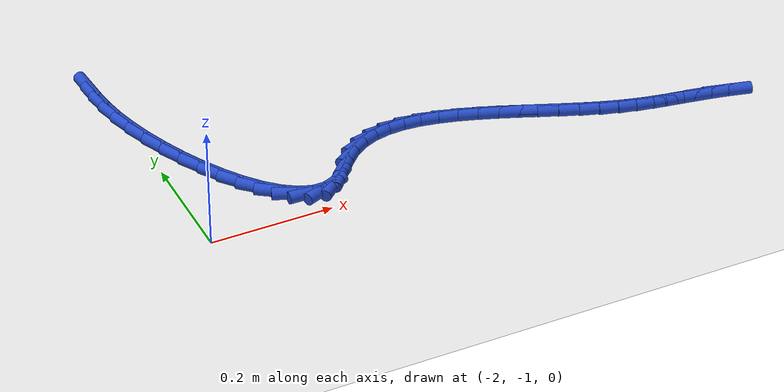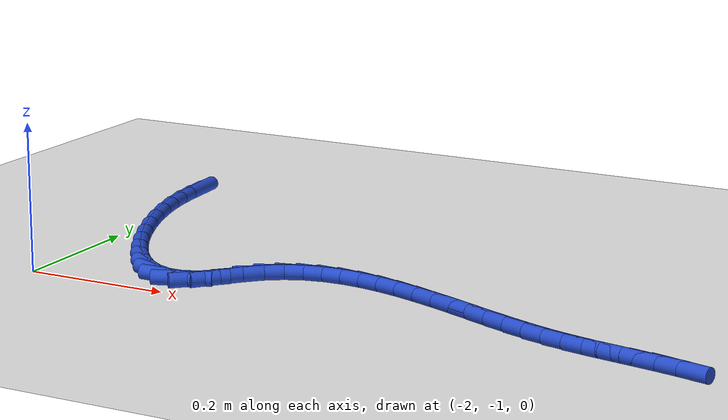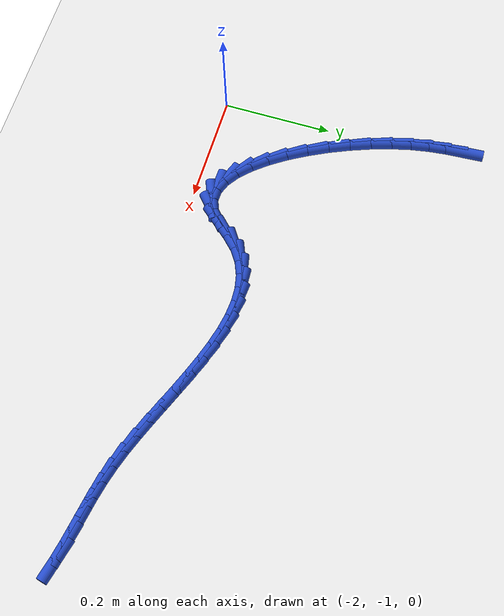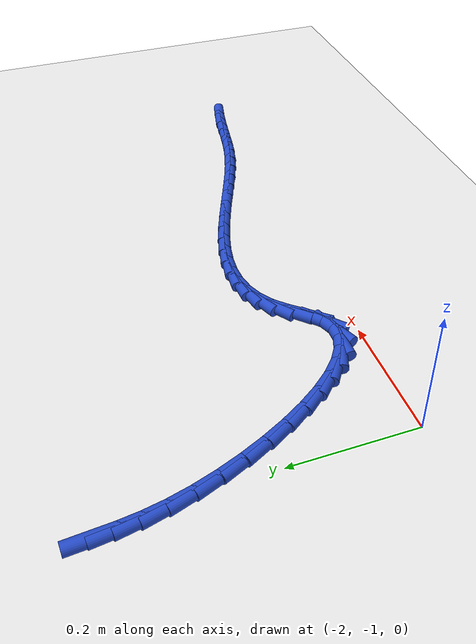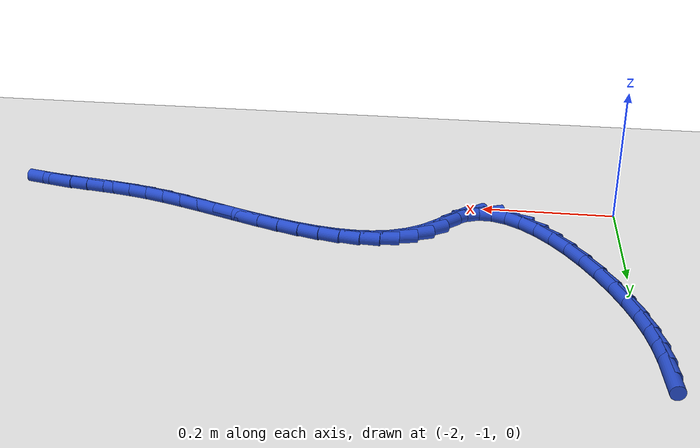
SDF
<sdf version="1.6">
 <world name="default">
  <model name="ground_plane">
   <static>1</static>
   <link name="link">
    <collision name="collision">
     <geometry><plane><normal>0 0 1</normal><size>100 100</size></plane></geometry>
     <surface><friction><ode><mu>100</mu><mu2>50</mu2></ode></friction></surface>
    </collision>
    <visual name="visual">
     <cast_shadows>0</cast_shadows>
     <geometry><plane><normal>0 0 1</normal><size>100 100</size></plane></geometry>
     <material>
      <script><uri>file://media/materials/scripts/gazebo.material</uri><name>Gazebo/WhiteGlow</name></script>
     </material>
    </visual>
   </link>
  </model>
  <model name="line">
   <link name="link_141">
    <pose>-2.022825148530679 -0.5503528811230335 0.01 0 1.57 -1.5067209440025462</pose>
    <collision name="collision">
     <geometry><cylinder><radius>0.01</radius><length>0.08</length></cylinder></geometry>
    </collision>
    <visual name="visual">
     <material>
      <script><name>Gazebo/Blue</name><uri>file://media/materials/scripts/gazebo.material</uri></script>
     </material>
     <geometry><cylinder><radius>0.01</radius><length>0.08</length></cylinder></geometry>
    </visual>
   </link>
   <link name="link_142">
    <pose>-2.020936011002648 -0.5797955680923984 0.01 0 1.57 -1.4574021422607188</pose>
    <collision name="collision">
     <geometry><cylinder><radius>0.01</radius><length>0.08</length></cylinder></geometry>
    </collision>
    <visual name="visual">
     <material>
      <script><name>Gazebo/Blue</name><uri>file://media/materials/scripts/gazebo.material</uri></script>
     </material>
     <geometry><cylinder><radius>0.01</radius><length>0.08</length></cylinder></geometry>
    </visual>
   </link>
   <link name="link_143">
    <pose>-2.0174088044160388 -0.6107678418025859 0.01 0 1.57 -1.3943007249524453</pose>
    <collision name="collision">
     <geometry><cylinder><radius>0.01</radius><length>0.08</length></cylinder></geometry>
    </collision>
    <visual name="visual">
     <material>
      <script><name>Gazebo/Blue</name><uri>file://media/materials/scripts/gazebo.material</uri></script>
     </material>
     <geometry><cylinder><radius>0.01</radius><length>0.08</length></cylinder></geometry>
    </visual>
   </link>
   <link name="link_144">
    <pose>-2.011534063825805 -0.643706978618781 0.01 0 1.57 -1.3257092247358675</pose>
    <collision name="collision">
     <geometry><cylinder><radius>0.01</radius><length>0.08</length></cylinder></geometry>
    </collision>
    <visual name="visual">
     <material>
      <script><name>Gazebo/Blue</name><uri>file://media/materials/scripts/gazebo.material</uri></script>
     </material>
     <geometry><cylinder><radius>0.01</radius><length>0.08</length></cylinder></geometry>
    </visual>
   </link>
   <link name="link_145">
    <pose>-2.002739988222112 -0.6788670765194355 0.01 0 1.57 -1.264859496534346</pose>
    <collision name="collision">
     <geometry><cylinder><radius>0.01</radius><length>0.08</length></cylinder></geometry>
    </collision>
    <visual name="visual">
     <material>
      <script><name>Gazebo/Blue</name><uri>file://media/materials/scripts/gazebo.material</uri></script>
     </material>
     <geometry><cylinder><radius>0.01</radius><length>0.08</length></cylinder></geometry>
    </visual>
   </link>
   <link name="link_146">
    <pose>-1.991141361108458 -0.7155886503915733 0.01 0 1.57 -1.2103237620043246</pose>
    <collision name="collision">
     <geometry><cylinder><radius>0.01</radius><length>0.08</length></cylinder></geometry>
    </collision>
    <visual name="visual">
     <material>
      <script><name>Gazebo/Blue</name><uri>file://media/materials/scripts/gazebo.material</uri></script>
     </material>
     <geometry><cylinder><radius>0.01</radius><length>0.08</length></cylinder></geometry>
    </visual>
   </link>
   <link name="link_147">
    <pose>-1.9770665873330988 -0.7529279662864959 0.01 0 1.57 -1.1577248672996276</pose>
    <collision name="collision">
     <geometry><cylinder><radius>0.01</radius><length>0.08</length></cylinder></geometry>
    </collision>
    <visual name="visual">
     <material>
      <script><name>Gazebo/Blue</name><uri>file://media/materials/scripts/gazebo.material</uri></script>
     </material>
     <geometry><cylinder><radius>0.01</radius><length>0.08</length></cylinder></geometry>
    </visual>
   </link>
   <link name="link_148">
    <pose>-1.9608441399079217 -0.789941199555614 0.01 0 1.57 -1.1033513878190766</pose>
    <collision name="collision">
     <geometry><cylinder><radius>0.01</radius><length>0.08</length></cylinder></geometry>
    </collision>
    <visual name="visual">
     <material>
      <script><name>Gazebo/Blue</name><uri>file://media/materials/scripts/gazebo.material</uri></script>
     </material>
     <geometry><cylinder><radius>0.01</radius><length>0.08</length></cylinder></geometry>
    </visual>
   </link>
   <link name="link_149">
    <pose>-1.942802491844811 -0.8256845255503414 0.01 0 1.57 -1.04331297645358</pose>
    <collision name="collision">
     <geometry><cylinder><radius>0.01</radius><length>0.08</length></cylinder></geometry>
    </collision>
    <visual name="visual">
     <material>
      <script><name>Gazebo/Blue</name><uri>file://media/materials/scripts/gazebo.material</uri></script>
     </material>
     <geometry><cylinder><radius>0.01</radius><length>0.08</length></cylinder></geometry>
    </visual>
   </link>
   <link name="link_150">
    <pose>-1.923270116155653 -0.8592141196220914 0.01 0 1.57 -0.9726826596746393</pose>
    <collision name="collision">
     <geometry><cylinder><radius>0.01</radius><length>0.08</length></cylinder></geometry>
    </collision>
    <visual name="visual">
     <material>
      <script><name>Gazebo/Blue</name><uri>file://media/materials/scripts/gazebo.material</uri></script>
     </material>
     <geometry><cylinder><radius>0.01</radius><length>0.08</length></cylinder></geometry>
    </visual>
   </link>
   <link name="link_151">
    <pose>-1.9025754858523325 -0.8895861571222761 0.01 0 1.57 -0.8842866238934173</pose>
    <collision name="collision">
     <geometry><cylinder><radius>0.01</radius><length>0.08</length></cylinder></geometry>
    </collision>
    <visual name="visual">
     <material>
      <script><name>Gazebo/Blue</name><uri>file://media/materials/scripts/gazebo.material</uri></script>
     </material>
     <geometry><cylinder><radius>0.01</radius><length>0.08</length></cylinder></geometry>
    </visual>
   </link>
   <link name="link_152">
    <pose>-1.881047073946735 -0.9158568134023086 0.01 0 1.57 -0.7667159734645543</pose>
    <collision name="collision">
     <geometry><cylinder><radius>0.01</radius><length>0.08</length></cylinder></geometry>
    </collision>
    <visual name="visual">
     <material>
      <script><name>Gazebo/Blue</name><uri>file://media/materials/scripts/gazebo.material</uri></script>
     </material>
     <geometry><cylinder><radius>0.01</radius><length>0.08</length></cylinder></geometry>
    </visual>
   </link>
   <link name="link_153">
    <pose>-1.8590133534507454 -0.937082263813602 0.01 0 1.57 -0.6012674045998243</pose>
    <collision name="collision">
     <geometry><cylinder><radius>0.01</radius><length>0.08</length></cylinder></geometry>
    </collision>
    <visual name="visual">
     <material>
      <script><name>Gazebo/Blue</name><uri>file://media/materials/scripts/gazebo.material</uri></script>
     </material>
     <geometry><cylinder><radius>0.01</radius><length>0.08</length></cylinder></geometry>
    </visual>
   </link>
   <link name="link_154">
    <pose>-1.8368027973762504 -0.9523186837075693 0.01 0 1.57 -0.3600208401753605</pose>
    <collision name="collision">
     <geometry><cylinder><radius>0.01</radius><length>0.08</length></cylinder></geometry>
    </collision>
    <visual name="visual">
     <material>
      <script><name>Gazebo/Blue</name><uri>file://media/materials/scripts/gazebo.material</uri></script>
     </material>
     <geometry><cylinder><radius>0.01</radius><length>0.08</length></cylinder></geometry>
    </visual>
   </link>
   <link name="link_155">
    <pose>-1.8147438787351335 -0.9606222484356227 0.01 0 1.57 -0.019780019148368723</pose>
    <collision name="collision">
     <geometry><cylinder><radius>0.01</radius><length>0.08</length></cylinder></geometry>
    </collision>
    <visual name="visual">
     <material>
      <script><name>Gazebo/Blue</name><uri>file://media/materials/scripts/gazebo.material</uri></script>
     </material>
     <geometry><cylinder><radius>0.01</radius><length>0.08</length></cylinder></geometry>
    </visual>
   </link>
   <link name="link_156">
    <pose>-1.793165070539282 -0.9610491333491754 0.01 0 1.57 0.384051240198109</pose>
    <collision name="collision">
     <geometry><cylinder><radius>0.01</radius><length>0.08</length></cylinder></geometry>
    </collision>
    <visual name="visual">
     <material>
      <script><name>Gazebo/Blue</name><uri>file://media/materials/scripts/gazebo.material</uri></script>
     </material>
     <geometry><cylinder><radius>0.01</radius><length>0.08</length></cylinder></geometry>
    </visual>
   </link>
   <link name="link_157">
    <pose>-1.7723948458005807 -0.9526555137996402 0.01 0 1.57 0.7334150105336558</pose>
    <collision name="collision">
     <geometry><cylinder><radius>0.01</radius><length>0.08</length></cylinder></geometry>
    </collision>
    <visual name="visual">
     <material>
      <script><name>Gazebo/Blue</name><uri>file://media/materials/scripts/gazebo.material</uri></script>
     </material>
     <geometry><cylinder><radius>0.01</radius><length>0.08</length></cylinder></geometry>
    </visual>
   </link>
   <link name="link_158">
    <pose>-1.752675830113138 -0.93488697651753 0.01 0 1.57 0.867558370786298</pose>
    <collision name="collision">
     <geometry><cylinder><radius>0.01</radius><length>0.08</length></cylinder></geometry>
    </collision>
    <visual name="visual">
     <material>
      <script><name>Gazebo/Blue</name><uri>file://media/materials/scripts/gazebo.material</uri></script>
     </material>
     <geometry><cylinder><radius>0.01</radius><length>0.08</length></cylinder></geometry>
    </visual>
   </link>
   <link name="link_159">
    <pose>-1.7332068442785966 -0.9119238978667035 0.01 0 1.57 0.7922463676728214</pose>
    <collision name="collision">
     <geometry><cylinder><radius>0.01</radius><length>0.08</length></cylinder></geometry>
    </collision>
    <visual name="visual">
     <material>
      <script><name>Gazebo/Blue</name><uri>file://media/materials/scripts/gazebo.material</uri></script>
     </material>
     <geometry><cylinder><radius>0.01</radius><length>0.08</length></cylinder></geometry>
    </visual>
   </link>
   <link name="link_160">
    <pose>-1.7125226783893497 -0.8909544752351355 0.01 0 1.57 0.5996605497377184</pose>
    <collision name="collision">
     <geometry><cylinder><radius>0.01</radius><length>0.08</length></cylinder></geometry>
    </collision>
    <visual name="visual">
     <material>
      <script><name>Gazebo/Blue</name><uri>file://media/materials/scripts/gazebo.material</uri></script>
     </material>
     <geometry><cylinder><radius>0.01</radius><length>0.08</length></cylinder></geometry>
    </visual>
   </link>
   <link name="link_161">
    <pose>-1.689939487208088 -0.8755157341141384 0.01 0 1.57 0.3986026713861217</pose>
    <collision name="collision">
     <geometry><cylinder><radius>0.01</radius><length>0.08</length></cylinder></geometry>
    </collision>
    <visual name="visual">
     <material>
      <script><name>Gazebo/Blue</name><uri>file://media/materials/scripts/gazebo.material</uri></script>
     </material>
     <geometry><cylinder><radius>0.01</radius><length>0.08</length></cylinder></geometry>
    </visual>
   </link>
   <link name="link_162">
    <pose>-1.665603700288155 -0.8652667884322285 0.01 0 1.57 0.21227026429608575</pose>
    <collision name="collision">
     <geometry><cylinder><radius>0.01</radius><length>0.08</length></cylinder></geometry>
    </collision>
    <visual name="visual">
     <material>
      <script><name>Gazebo/Blue</name><uri>file://media/materials/scripts/gazebo.material</uri></script>
     </material>
     <geometry><cylinder><radius>0.01</radius><length>0.08</length></cylinder></geometry>
    </visual>
   </link>
   <link name="link_163">
    <pose>-1.6397008158656685 -0.8596842765106005 0.01 0 1.57 0.052707855193336324</pose>
    <collision name="collision">
     <geometry><cylinder><radius>0.01</radius><length>0.08</length></cylinder></geometry>
    </collision>
    <visual name="visual">
     <material>
      <script><name>Gazebo/Blue</name><uri>file://media/materials/scripts/gazebo.material</uri></script>
     </material>
     <geometry><cylinder><radius>0.01</radius><length>0.08</length></cylinder></geometry>
    </visual>
   </link>
   <link name="link_164">
    <pose>-1.6124163321767444 -0.8582448366704469 0.01 0 1.57 -0.07640385383031506</pose>
    <collision name="collision">
     <geometry><cylinder><radius>0.01</radius><length>0.08</length></cylinder></geometry>
    </collision>
    <visual name="visual">
     <material>
      <script><name>Gazebo/Blue</name><uri>file://media/materials/scripts/gazebo.material</uri></script>
     </material>
     <geometry><cylinder><radius>0.01</radius><length>0.08</length></cylinder></geometry>
    </visual>
   </link>
   <link name="link_165">
    <pose>-1.5839357474575 -0.8604251072329617 0.01 0 1.57 -0.1770484759457326</pose>
    <collision name="collision">
     <geometry><cylinder><radius>0.01</radius><length>0.08</length></cylinder></geometry>
    </collision>
    <visual name="visual">
     <material>
      <script><name>Gazebo/Blue</name><uri>file://media/materials/scripts/gazebo.material</uri></script>
     </material>
     <geometry><cylinder><radius>0.01</radius><length>0.08</length></cylinder></geometry>
    </visual>
   </link>
   <link name="link_166">
    <pose>-1.5544445599440517 -0.8657017265193384 0.01 0 1.57 -0.25335963982494564</pose>
    <collision name="collision">
     <geometry><cylinder><radius>0.01</radius><length>0.08</length></cylinder></geometry>
    </collision>
    <visual name="visual">
     <material>
      <script><name>Gazebo/Blue</name><uri>file://media/materials/scripts/gazebo.material</uri></script>
     </material>
     <geometry><cylinder><radius>0.01</radius><length>0.08</length></cylinder></geometry>
    </visual>
   </link>
   <link name="link_167">
    <pose>-1.5241282678725168 -0.8735513328507699 0.01 0 1.57 -0.3095078954295454</pose>
    <collision name="collision">
     <geometry><cylinder><radius>0.01</radius><length>0.08</length></cylinder></geometry>
    </collision>
    <visual name="visual">
     <material>
      <script><name>Gazebo/Blue</name><uri>file://media/materials/scripts/gazebo.material</uri></script>
     </material>
     <geometry><cylinder><radius>0.01</radius><length>0.08</length></cylinder></geometry>
    </visual>
   </link>
   <link name="link_168">
    <pose>-1.4931723694790122 -0.8834505645484504 0.01 0 1.57 -0.3488743319923351</pose>
    <collision name="collision">
     <geometry><cylinder><radius>0.01</radius><length>0.08</length></cylinder></geometry>
    </collision>
    <visual name="visual">
     <material>
      <script><name>Gazebo/Blue</name><uri>file://media/materials/scripts/gazebo.material</uri></script>
     </material>
     <geometry><cylinder><radius>0.01</radius><length>0.08</length></cylinder></geometry>
    </visual>
   </link>
   <link name="link_169">
    <pose>-1.4617623629996548 -0.894876059933573 0.01 0 1.57 -0.3738748426272596</pose>
    <collision name="collision">
     <geometry><cylinder><radius>0.01</radius><length>0.08</length></cylinder></geometry>
    </collision>
    <visual name="visual">
     <material>
      <script><name>Gazebo/Blue</name><uri>file://media/materials/scripts/gazebo.material</uri></script>
     </material>
     <geometry><cylinder><radius>0.01</radius><length>0.08</length></cylinder></geometry>
    </visual>
   </link>
   <link name="link_170">
    <pose>-1.4300837466705598 -0.9073044573273317 0.01 0 1.57 -0.38601064326408063</pose>
    <collision name="collision">
     <geometry><cylinder><radius>0.01</radius><length>0.08</length></cylinder></geometry>
    </collision>
    <visual name="visual">
     <material>
      <script><name>Gazebo/Blue</name><uri>file://media/materials/scripts/gazebo.material</uri></script>
     </material>
     <geometry><cylinder><radius>0.01</radius><length>0.08</length></cylinder></geometry>
    </visual>
   </link>
   <link name="link_171">
    <pose>-1.3983220187278471 -0.9202123950509193 0.01 0 1.57 -0.385950689916885</pose>
    <collision name="collision">
     <geometry><cylinder><radius>0.01</radius><length>0.08</length></cylinder></geometry>
    </collision>
    <visual name="visual">
     <material>
      <script><name>Gazebo/Blue</name><uri>file://media/materials/scripts/gazebo.material</uri></script>
     </material>
     <geometry><cylinder><radius>0.01</radius><length>0.08</length></cylinder></geometry>
    </visual>
   </link>
   <link name="link_172">
    <pose>-1.3666626774076316 -0.9330765114255297 0.01 0 1.57 -0.37357213597427874</pose>
    <collision name="collision">
     <geometry><cylinder><radius>0.01</radius><length>0.08</length></cylinder></geometry>
    </collision>
    <visual name="visual">
     <material>
      <script><name>Gazebo/Blue</name><uri>file://media/materials/scripts/gazebo.material</uri></script>
     </material>
     <geometry><cylinder><radius>0.01</radius><length>0.08</length></cylinder></geometry>
    </visual>
   </link>
   <link name="link_173">
    <pose>-1.3352912209460306 -0.9453734447723563 0.01 0 1.57 -0.3479339495189804</pose>
    <collision name="collision">
     <geometry><cylinder><radius>0.01</radius><length>0.08</length></cylinder></geometry>
    </collision>
    <visual name="visual">
     <material>
      <script><name>Gazebo/Blue</name><uri>file://media/materials/scripts/gazebo.material</uri></script>
     </material>
     <geometry><cylinder><radius>0.01</radius><length>0.08</length></cylinder></geometry>
    </visual>
   </link>
   <link name="link_174">
    <pose>-1.3043931475791608 -0.9565798334125928 0.01 0 1.57 -0.3071793155715478</pose>
    <collision name="collision">
     <geometry><cylinder><radius>0.01</radius><length>0.08</length></cylinder></geometry>
    </collision>
    <visual name="visual">
     <material>
      <script><name>Gazebo/Blue</name><uri>file://media/materials/scripts/gazebo.material</uri></script>
     </material>
     <geometry><cylinder><radius>0.01</radius><length>0.08</length></cylinder></geometry>
    </visual>
   </link>
   <link name="link_175">
    <pose>-1.2741539555431394 -0.9661723156674324 0.01 0 1.57 -0.2533183846172204</pose>
    <collision name="collision">
     <geometry><cylinder><radius>0.01</radius><length>0.08</length></cylinder></geometry>
    </collision>
    <visual name="visual">
     <material>
      <script><name>Gazebo/Blue</name><uri>file://media/materials/scripts/gazebo.material</uri></script>
     </material>
     <geometry><cylinder><radius>0.01</radius><length>0.08</length></cylinder></geometry>
    </visual>
   </link>
   <link name="link_176">
    <pose>-1.2446952120376071 -0.9737985855663502 0.01 0 1.57 -0.20689087464066783</pose>
    <collision name="collision">
     <geometry><cylinder><radius>0.01</radius><length>0.08</length></cylinder></geometry>
    </collision>
    <visual name="visual">
     <material>
      <script><name>Gazebo/Blue</name><uri>file://media/materials/scripts/gazebo.material</uri></script>
     </material>
     <geometry><cylinder><radius>0.01</radius><length>0.08</length></cylinder></geometry>
    </visual>
   </link>
   <link name="link_177">
    <pose>-1.215860214071444 -0.9798508848139286 0.01 0 1.57 -0.17650006064304466</pose>
    <collision name="collision">
     <geometry><cylinder><radius>0.01</radius><length>0.08</length></cylinder></geometry>
    </collision>
    <visual name="visual">
     <material>
      <script><name>Gazebo/Blue</name><uri>file://media/materials/scripts/gazebo.material</uri></script>
     </material>
     <geometry><cylinder><radius>0.01</radius><length>0.08</length></cylinder></geometry>
    </visual>
   </link>
   <link name="link_178">
    <pose>-1.1874165663649896 -0.9849239795651767 0.01 0 1.57 -0.16427291127126642</pose>
    <collision name="collision">
     <geometry><cylinder><radius>0.01</radius><length>0.08</length></cylinder></geometry>
    </collision>
    <visual name="visual">
     <material>
      <script><name>Gazebo/Blue</name><uri>file://media/materials/scripts/gazebo.material</uri></script>
     </material>
     <geometry><cylinder><radius>0.01</radius><length>0.08</length></cylinder></geometry>
    </visual>
   </link>
   <link name="link_179">
    <pose>-1.1591318720846977 -0.9896126401327279 0.01 0 1.57 -0.1710660912060923</pose>
    <collision name="collision">
     <geometry><cylinder><radius>0.01</radius><length>0.08</length></cylinder></geometry>
    </collision>
    <visual name="visual">
     <material>
      <script><name>Gazebo/Blue</name><uri>file://media/materials/scripts/gazebo.material</uri></script>
     </material>
     <geometry><cylinder><radius>0.01</radius><length>0.08</length></cylinder></geometry>
    </visual>
   </link>
   <link name="link_180">
    <pose>-1.130773734397022 -0.9945116368292145 0.01 0 1.57 -0.19643288134866238</pose>
    <collision name="collision">
     <geometry><cylinder><radius>0.01</radius><length>0.08</length></cylinder></geometry>
    </collision>
    <visual name="visual">
     <material>
      <script><name>Gazebo/Blue</name><uri>file://media/materials/scripts/gazebo.material</uri></script>
     </material>
     <geometry><cylinder><radius>0.01</radius><length>0.08</length></cylinder></geometry>
    </visual>
   </link>
   <link name="link_181">
    <pose>-1.1021097564684161 -1.0002157399672689 0.01 0 1.57 -0.2384122111177202</pose>
    <collision name="collision">
     <geometry><cylinder><radius>0.01</radius><length>0.08</length></cylinder></geometry>
    </collision>
    <visual name="visual">
     <material>
      <script><name>Gazebo/Blue</name><uri>file://media/materials/scripts/gazebo.material</uri></script>
     </material>
     <geometry><cylinder><radius>0.01</radius><length>0.08</length></cylinder></geometry>
    </visual>
   </link>
  </model>
 </world>
</sdf>
